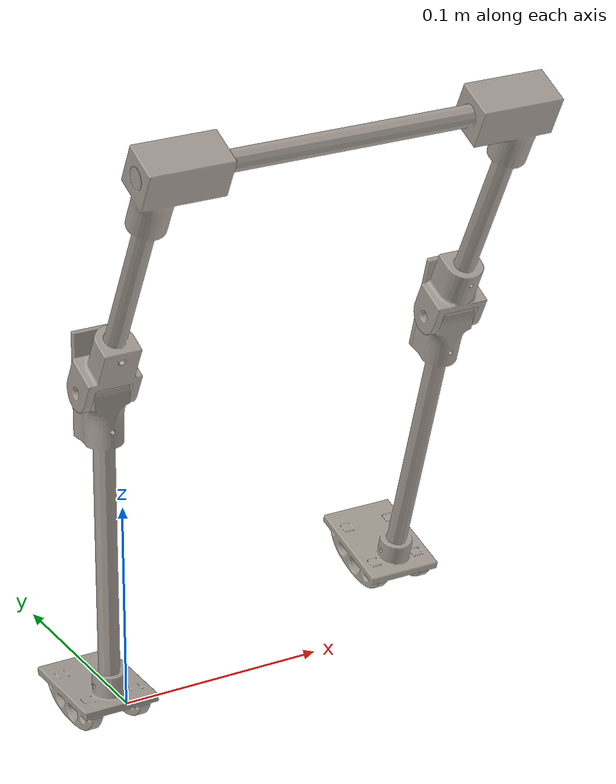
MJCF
<mujoco model="erster_entwurf">
  <compiler angle="radian"/>

  <asset>
    <mesh name="base_link" file="base_link.STL"/>
    <mesh name="thigh_link_1" file="thigh_link_1.STL"/>
    <mesh name="connector_link" file="connector_link.STL"/>
    <mesh name="thigh_link_2" file="thigh_link_2.STL"/>
    <mesh name="lower_link" file="lower_link.STL"/>
  </asset>

  <worldbody>
    <body name="base_link">
      <inertial pos="0 0 2" quat="0.999993 0.00383906 8.27578e-07 -2.07572e-05" mass="0.267569" diaginertia="0.000172537 0.000161439 2.96516e-05"/>
      <joint name="world=" pos="0 0 0" axis="1 0 0"/>
      <geom type="mesh" rgba="0.65098 0.619608 0.588235 1" mesh="base_link"/>
      <body name="thigh_link_1" pos="-0.0015 -0.011999 0.16702" quat="0.97383 0.227276 0 0">
        <inertial pos="0.0757707 1.3655e-09 0.0929091" quat="0.499662 0.499662 0.500338 0.500338" mass="0.633801" diaginertia="0.00452005 0.00418123 0.000367904"/>
        <joint name="thigh_joint_1" pos="0 0 0" axis="-1 0 0"/>
        <geom type="mesh" rgba="0.65098 0.619608 0.588235 1" mesh="thigh_link_1"/>
        <geom pos="0.17577 0 0.13" quat="1 0 0 0" type="mesh" rgba="0.65098 0.619608 0.588235 1" mesh="connector_link"/>
        <geom pos="0.177542 0 0" quat="1 0 0 0" type="mesh" rgba="0.65098 0.619608 0.588235 1" mesh="thigh_link_2"/>
        <body name="lower_link" pos="0.177542 0 0">
          <inertial pos="-0.0130539 -0.00885514 -0.0820533" quat="0.996918 -0.0784512 -8.66029e-07 -2.04383e-05" mass="0.267568" diaginertia="0.000172537 0.00016144 2.96513e-05"/>
          <joint name="lower_joint" pos="0 0 0" axis="1 0 0"/>
          <geom type="mesh" rgba="0.65098 0.619608 0.588235 1" mesh="lower_link"/>
        </body>
      </body>
    </body>
  </worldbody>
</mujoco>
